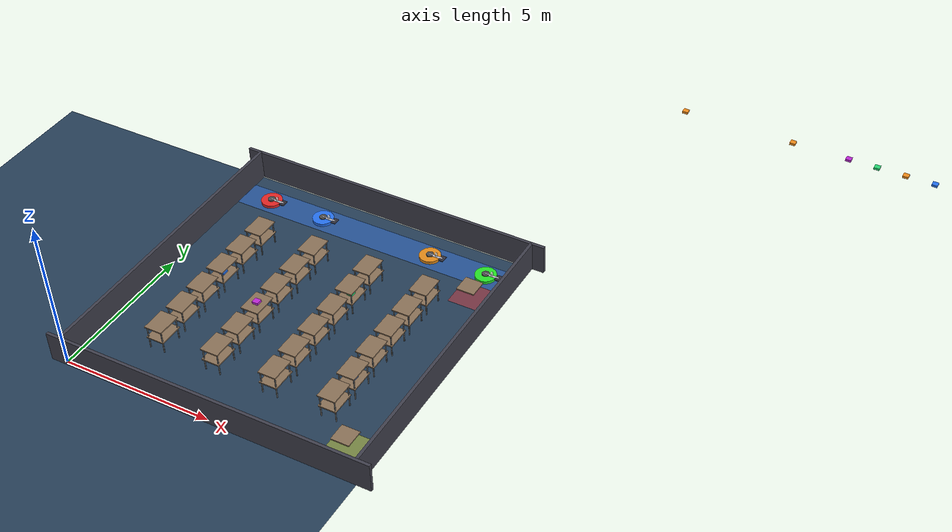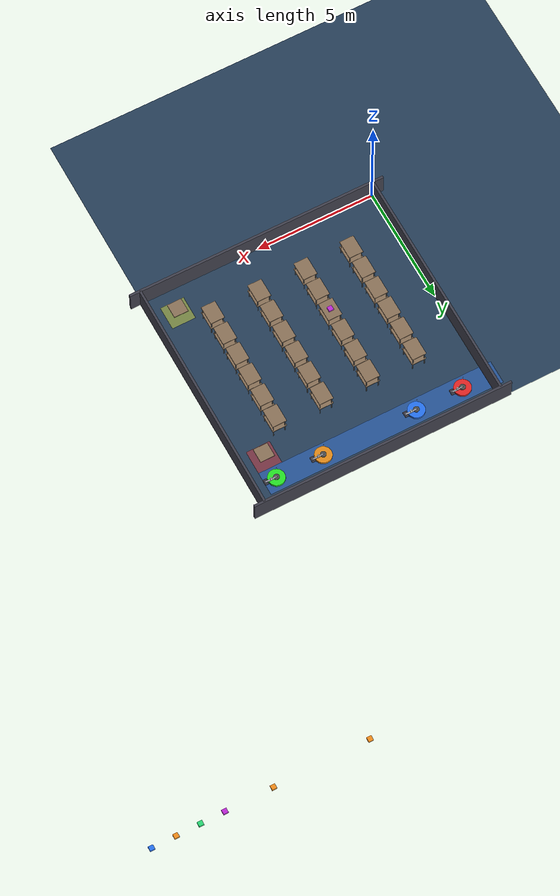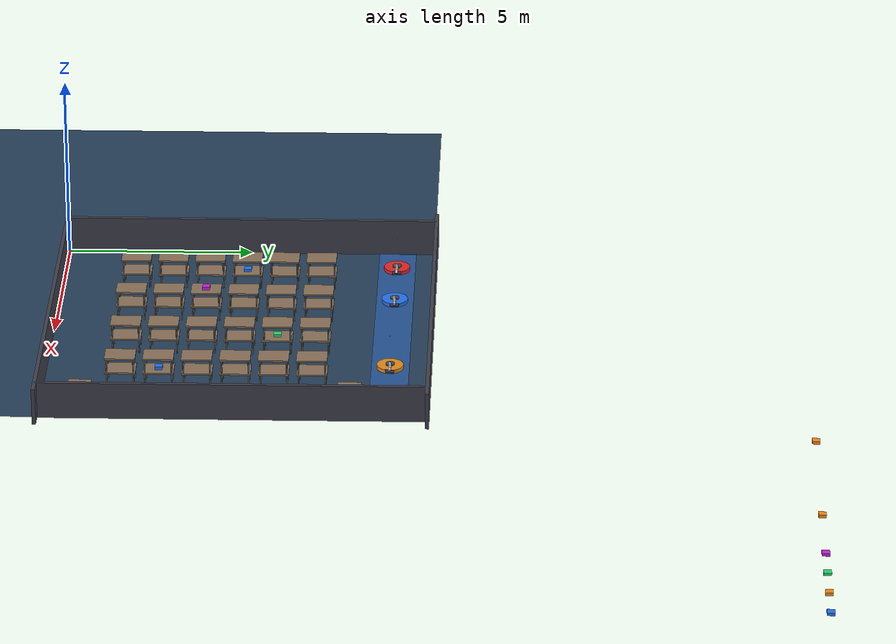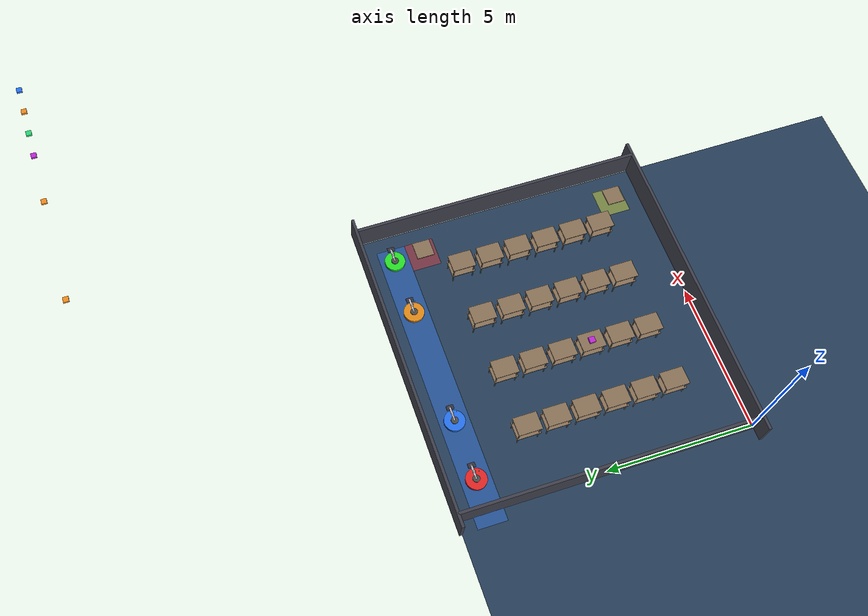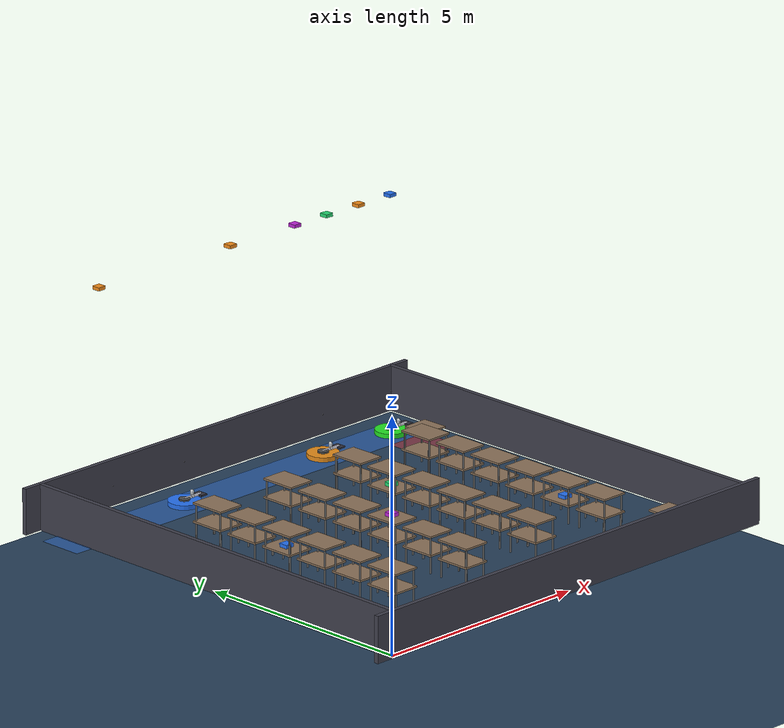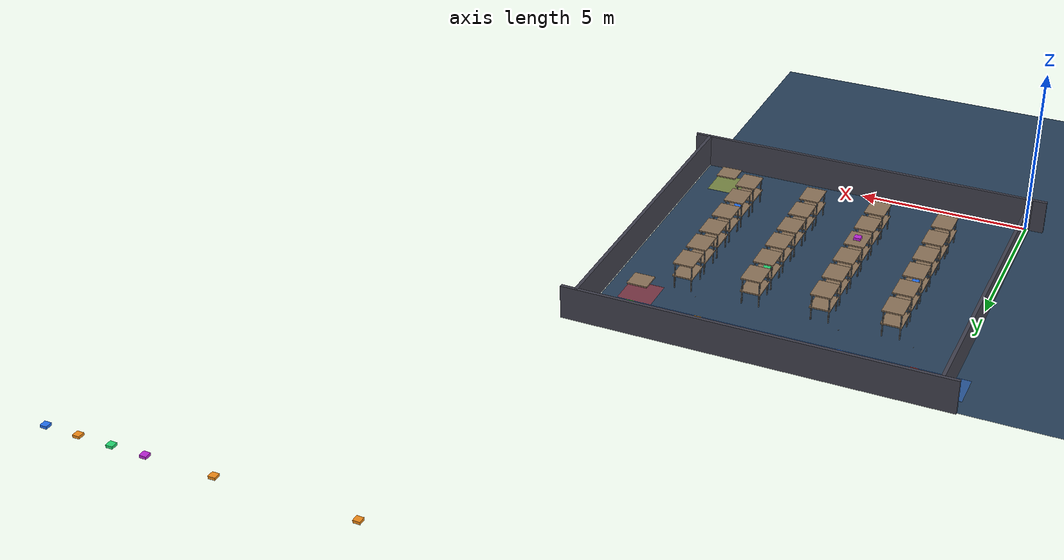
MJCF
<mujoco>
    <option gravity="0 0 -9.81" timestep="0.002" />
    <default>
        <geom contype="1" conaffinity="1" group="0"/>
    </default>
    <asset>
        <texture type="2d" name="grid" builtin="checker" rgb1=".2 .3 .4" rgb2=".1 .2 .3" width="512" height="512"/>
        <material name="grid_mat" texture="grid" texrepeat="10 10" texuniform="true" reflectance="0.2"/>
        <material name="shelf_mat" rgba="0.55 0.45 0.35 1" />
        <material name="wall_mat" rgba="0.25 0.25 0.30 1" />
        <material name="pkg_orange" rgba="0.95 0.55 0.1 1" />
        <material name="pkg_blue" rgba="0.15 0.45 0.95 1" />
        <material name="pkg_purple" rgba="0.75 0.15 0.85 1" />
        <material name="pkg_green" rgba="0.15 0.85 0.45 1" />
        <material name="mat_parking" rgba="0.2 0.5 1.0 0.4"/>
        <material name="mat_outbound" rgba="1.0 0.2 0.2 0.4"/>
        <material name="mat_inbound" rgba="1.0 1.0 0.2 0.4"/>
    </asset>
    <worldbody>
        <light directional="true" diffuse=".8 .8 .8" specular=".2 .2 .2" pos="0 0 10" dir="0 0 -1"/>
        <camera name="top_down" pos="5 5 12" zaxis="0 0 1" fovy="45"/>
        <camera name="isometric" pos="5 -8 10" xyaxes="1 0 0 0 0.707 0.707" fovy="55"/>
        <!-- Floor -->
        <geom type="plane" size="10 10 0.1" material="grid_mat" contype="1" conaffinity="1"/>

        <!-- ============== VISUAL ZONES ============== -->
        <!-- Parking (x=0..9, y=9) -->
        <geom name="zone_parking" type="box" size="5.0 0.5 0.005" pos="4.5 9.0 0.005" material="mat_parking" contype="0" conaffinity="0"/>
        <!-- Inbound Dock / Get Place (x=9, y=1) -->
        <geom name="zone_inbound" type="box" size="0.5 0.5 0.005" pos="9.0 1.0 0.005" material="mat_inbound" contype="0" conaffinity="0"/>
        <geom name="inbound_package_stand" type="box" size="0.3 0.3 0.02" pos="9.0 1.0 0.4" material="shelf_mat"/>
        <!-- Outbound Dock / Drop-off (x=9, y=8) -->
        <geom name="zone_outbound" type="box" size="0.5 0.5 0.005" pos="9.0 8.0 0.005" material="mat_outbound" contype="0" conaffinity="0"/>
        <geom name="outbound_package_stand" type="box" size="0.3 0.3 0.02" pos="9.0 8.0 0.4" material="shelf_mat"/>

        <!-- ============== PERIMETER WALLS ============== -->
        <geom name="wall_south" type="box" size="5.5 0.05 0.5" pos="5 -0.05 0.5" material="wall_mat"/>
        <geom name="wall_north" type="box" size="5.5 0.05 0.5" pos="5 10.05 0.5" material="wall_mat"/>
        <geom name="wall_west" type="box" size="0.05 5.05 0.5" pos="-0.05 5 0.5" material="wall_mat"/>
        <geom name="wall_east" type="box" size="0.05 5.05 0.5" pos="10.05 5 0.5" material="wall_mat"/>

        <!-- ============== SHELF ROW x=2, y=2..7 ============== -->
        <body name="shelf_2_2" pos="2 2 0"><geom name="shelf_2_2_tier_0" type="box" size="0.3 0.4 0.02" pos="0 0 0.4" material="shelf_mat"/><geom name="shelf_2_2_tier_1" type="box" size="0.3 0.4 0.02" pos="0 0 0.8" material="shelf_mat"/><geom name="shelf_2_2_leg_sw" type="cylinder" size="0.02 0.4" pos="-0.25 -0.35 0.4" rgba="0.4 0.4 0.4 1"/><geom name="shelf_2_2_leg_se" type="cylinder" size="0.02 0.4" pos="0.25 -0.35 0.4" rgba="0.4 0.4 0.4 1"/><geom name="shelf_2_2_leg_nw" type="cylinder" size="0.02 0.4" pos="-0.25 0.35 0.4" rgba="0.4 0.4 0.4 1"/><geom name="shelf_2_2_leg_ne" type="cylinder" size="0.02 0.4" pos="0.25 0.35 0.4" rgba="0.4 0.4 0.4 1"/></body>
        <body name="shelf_2_3" pos="2 3 0"><geom name="shelf_2_3_tier_0" type="box" size="0.3 0.4 0.02" pos="0 0 0.4" material="shelf_mat"/><geom name="shelf_2_3_tier_1" type="box" size="0.3 0.4 0.02" pos="0 0 0.8" material="shelf_mat"/><geom name="shelf_2_3_leg_sw" type="cylinder" size="0.02 0.4" pos="-0.25 -0.35 0.4" rgba="0.4 0.4 0.4 1"/><geom name="shelf_2_3_leg_se" type="cylinder" size="0.02 0.4" pos="0.25 -0.35 0.4" rgba="0.4 0.4 0.4 1"/><geom name="shelf_2_3_leg_nw" type="cylinder" size="0.02 0.4" pos="-0.25 0.35 0.4" rgba="0.4 0.4 0.4 1"/><geom name="shelf_2_3_leg_ne" type="cylinder" size="0.02 0.4" pos="0.25 0.35 0.4" rgba="0.4 0.4 0.4 1"/></body>
        <body name="shelf_2_4" pos="2 4 0"><geom name="shelf_2_4_tier_0" type="box" size="0.3 0.4 0.02" pos="0 0 0.4" material="shelf_mat"/><geom name="shelf_2_4_tier_1" type="box" size="0.3 0.4 0.02" pos="0 0 0.8" material="shelf_mat"/><geom name="shelf_2_4_leg_sw" type="cylinder" size="0.02 0.4" pos="-0.25 -0.35 0.4" rgba="0.4 0.4 0.4 1"/><geom name="shelf_2_4_leg_se" type="cylinder" size="0.02 0.4" pos="0.25 -0.35 0.4" rgba="0.4 0.4 0.4 1"/><geom name="shelf_2_4_leg_nw" type="cylinder" size="0.02 0.4" pos="-0.25 0.35 0.4" rgba="0.4 0.4 0.4 1"/><geom name="shelf_2_4_leg_ne" type="cylinder" size="0.02 0.4" pos="0.25 0.35 0.4" rgba="0.4 0.4 0.4 1"/></body>
        <body name="shelf_2_5" pos="2 5 0"><geom name="shelf_2_5_tier_0" type="box" size="0.3 0.4 0.02" pos="0 0 0.4" material="shelf_mat"/><geom name="shelf_2_5_tier_1" type="box" size="0.3 0.4 0.02" pos="0 0 0.8" material="shelf_mat"/><geom name="shelf_2_5_leg_sw" type="cylinder" size="0.02 0.4" pos="-0.25 -0.35 0.4" rgba="0.4 0.4 0.4 1"/><geom name="shelf_2_5_leg_se" type="cylinder" size="0.02 0.4" pos="0.25 -0.35 0.4" rgba="0.4 0.4 0.4 1"/><geom name="shelf_2_5_leg_nw" type="cylinder" size="0.02 0.4" pos="-0.25 0.35 0.4" rgba="0.4 0.4 0.4 1"/><geom name="shelf_2_5_leg_ne" type="cylinder" size="0.02 0.4" pos="0.25 0.35 0.4" rgba="0.4 0.4 0.4 1"/></body>
        <body name="shelf_2_6" pos="2 6 0"><geom name="shelf_2_6_tier_0" type="box" size="0.3 0.4 0.02" pos="0 0 0.4" material="shelf_mat"/><geom name="shelf_2_6_tier_1" type="box" size="0.3 0.4 0.02" pos="0 0 0.8" material="shelf_mat"/><geom name="shelf_2_6_leg_sw" type="cylinder" size="0.02 0.4" pos="-0.25 -0.35 0.4" rgba="0.4 0.4 0.4 1"/><geom name="shelf_2_6_leg_se" type="cylinder" size="0.02 0.4" pos="0.25 -0.35 0.4" rgba="0.4 0.4 0.4 1"/><geom name="shelf_2_6_leg_nw" type="cylinder" size="0.02 0.4" pos="-0.25 0.35 0.4" rgba="0.4 0.4 0.4 1"/><geom name="shelf_2_6_leg_ne" type="cylinder" size="0.02 0.4" pos="0.25 0.35 0.4" rgba="0.4 0.4 0.4 1"/></body>
        <body name="shelf_2_7" pos="2 7 0"><geom name="shelf_2_7_tier_0" type="box" size="0.3 0.4 0.02" pos="0 0 0.4" material="shelf_mat"/><geom name="shelf_2_7_tier_1" type="box" size="0.3 0.4 0.02" pos="0 0 0.8" material="shelf_mat"/><geom name="shelf_2_7_leg_sw" type="cylinder" size="0.02 0.4" pos="-0.25 -0.35 0.4" rgba="0.4 0.4 0.4 1"/><geom name="shelf_2_7_leg_se" type="cylinder" size="0.02 0.4" pos="0.25 -0.35 0.4" rgba="0.4 0.4 0.4 1"/><geom name="shelf_2_7_leg_nw" type="cylinder" size="0.02 0.4" pos="-0.25 0.35 0.4" rgba="0.4 0.4 0.4 1"/><geom name="shelf_2_7_leg_ne" type="cylinder" size="0.02 0.4" pos="0.25 0.35 0.4" rgba="0.4 0.4 0.4 1"/></body>

        <!-- ============== SHELF ROW x=4, y=2..7 ============== -->
        <body name="shelf_4_2" pos="4 2 0"><geom name="shelf_4_2_tier_0" type="box" size="0.3 0.4 0.02" pos="0 0 0.4" material="shelf_mat"/><geom name="shelf_4_2_tier_1" type="box" size="0.3 0.4 0.02" pos="0 0 0.8" material="shelf_mat"/><geom name="shelf_4_2_leg_sw" type="cylinder" size="0.02 0.4" pos="-0.25 -0.35 0.4" rgba="0.4 0.4 0.4 1"/><geom name="shelf_4_2_leg_se" type="cylinder" size="0.02 0.4" pos="0.25 -0.35 0.4" rgba="0.4 0.4 0.4 1"/><geom name="shelf_4_2_leg_nw" type="cylinder" size="0.02 0.4" pos="-0.25 0.35 0.4" rgba="0.4 0.4 0.4 1"/><geom name="shelf_4_2_leg_ne" type="cylinder" size="0.02 0.4" pos="0.25 0.35 0.4" rgba="0.4 0.4 0.4 1"/></body>
        <body name="shelf_4_3" pos="4 3 0"><geom name="shelf_4_3_tier_0" type="box" size="0.3 0.4 0.02" pos="0 0 0.4" material="shelf_mat"/><geom name="shelf_4_3_tier_1" type="box" size="0.3 0.4 0.02" pos="0 0 0.8" material="shelf_mat"/><geom name="shelf_4_3_leg_sw" type="cylinder" size="0.02 0.4" pos="-0.25 -0.35 0.4" rgba="0.4 0.4 0.4 1"/><geom name="shelf_4_3_leg_se" type="cylinder" size="0.02 0.4" pos="0.25 -0.35 0.4" rgba="0.4 0.4 0.4 1"/><geom name="shelf_4_3_leg_nw" type="cylinder" size="0.02 0.4" pos="-0.25 0.35 0.4" rgba="0.4 0.4 0.4 1"/><geom name="shelf_4_3_leg_ne" type="cylinder" size="0.02 0.4" pos="0.25 0.35 0.4" rgba="0.4 0.4 0.4 1"/></body>
        <body name="shelf_4_4" pos="4 4 0"><geom name="shelf_4_4_tier_0" type="box" size="0.3 0.4 0.02" pos="0 0 0.4" material="shelf_mat"/><geom name="shelf_4_4_tier_1" type="box" size="0.3 0.4 0.02" pos="0 0 0.8" material="shelf_mat"/><geom name="shelf_4_4_leg_sw" type="cylinder" size="0.02 0.4" pos="-0.25 -0.35 0.4" rgba="0.4 0.4 0.4 1"/><geom name="shelf_4_4_leg_se" type="cylinder" size="0.02 0.4" pos="0.25 -0.35 0.4" rgba="0.4 0.4 0.4 1"/><geom name="shelf_4_4_leg_nw" type="cylinder" size="0.02 0.4" pos="-0.25 0.35 0.4" rgba="0.4 0.4 0.4 1"/><geom name="shelf_4_4_leg_ne" type="cylinder" size="0.02 0.4" pos="0.25 0.35 0.4" rgba="0.4 0.4 0.4 1"/></body>
        <body name="shelf_4_5" pos="4 5 0"><geom name="shelf_4_5_tier_0" type="box" size="0.3 0.4 0.02" pos="0 0 0.4" material="shelf_mat"/><geom name="shelf_4_5_tier_1" type="box" size="0.3 0.4 0.02" pos="0 0 0.8" material="shelf_mat"/><geom name="shelf_4_5_leg_sw" type="cylinder" size="0.02 0.4" pos="-0.25 -0.35 0.4" rgba="0.4 0.4 0.4 1"/><geom name="shelf_4_5_leg_se" type="cylinder" size="0.02 0.4" pos="0.25 -0.35 0.4" rgba="0.4 0.4 0.4 1"/><geom name="shelf_4_5_leg_nw" type="cylinder" size="0.02 0.4" pos="-0.25 0.35 0.4" rgba="0.4 0.4 0.4 1"/><geom name="shelf_4_5_leg_ne" type="cylinder" size="0.02 0.4" pos="0.25 0.35 0.4" rgba="0.4 0.4 0.4 1"/></body>
        <body name="shelf_4_6" pos="4 6 0"><geom name="shelf_4_6_tier_0" type="box" size="0.3 0.4 0.02" pos="0 0 0.4" material="shelf_mat"/><geom name="shelf_4_6_tier_1" type="box" size="0.3 0.4 0.02" pos="0 0 0.8" material="shelf_mat"/><geom name="shelf_4_6_leg_sw" type="cylinder" size="0.02 0.4" pos="-0.25 -0.35 0.4" rgba="0.4 0.4 0.4 1"/><geom name="shelf_4_6_leg_se" type="cylinder" size="0.02 0.4" pos="0.25 -0.35 0.4" rgba="0.4 0.4 0.4 1"/><geom name="shelf_4_6_leg_nw" type="cylinder" size="0.02 0.4" pos="-0.25 0.35 0.4" rgba="0.4 0.4 0.4 1"/><geom name="shelf_4_6_leg_ne" type="cylinder" size="0.02 0.4" pos="0.25 0.35 0.4" rgba="0.4 0.4 0.4 1"/></body>
        <body name="shelf_4_7" pos="4 7 0"><geom name="shelf_4_7_tier_0" type="box" size="0.3 0.4 0.02" pos="0 0 0.4" material="shelf_mat"/><geom name="shelf_4_7_tier_1" type="box" size="0.3 0.4 0.02" pos="0 0 0.8" material="shelf_mat"/><geom name="shelf_4_7_leg_sw" type="cylinder" size="0.02 0.4" pos="-0.25 -0.35 0.4" rgba="0.4 0.4 0.4 1"/><geom name="shelf_4_7_leg_se" type="cylinder" size="0.02 0.4" pos="0.25 -0.35 0.4" rgba="0.4 0.4 0.4 1"/><geom name="shelf_4_7_leg_nw" type="cylinder" size="0.02 0.4" pos="-0.25 0.35 0.4" rgba="0.4 0.4 0.4 1"/><geom name="shelf_4_7_leg_ne" type="cylinder" size="0.02 0.4" pos="0.25 0.35 0.4" rgba="0.4 0.4 0.4 1"/></body>

        <!-- ============== SHELF ROW x=6, y=2..7 ============== -->
        <body name="shelf_6_2" pos="6 2 0"><geom name="shelf_6_2_tier_0" type="box" size="0.3 0.4 0.02" pos="0 0 0.4" material="shelf_mat"/><geom name="shelf_6_2_tier_1" type="box" size="0.3 0.4 0.02" pos="0 0 0.8" material="shelf_mat"/><geom name="shelf_6_2_leg_sw" type="cylinder" size="0.02 0.4" pos="-0.25 -0.35 0.4" rgba="0.4 0.4 0.4 1"/><geom name="shelf_6_2_leg_se" type="cylinder" size="0.02 0.4" pos="0.25 -0.35 0.4" rgba="0.4 0.4 0.4 1"/><geom name="shelf_6_2_leg_nw" type="cylinder" size="0.02 0.4" pos="-0.25 0.35 0.4" rgba="0.4 0.4 0.4 1"/><geom name="shelf_6_2_leg_ne" type="cylinder" size="0.02 0.4" pos="0.25 0.35 0.4" rgba="0.4 0.4 0.4 1"/></body>
        <body name="shelf_6_3" pos="6 3 0"><geom name="shelf_6_3_tier_0" type="box" size="0.3 0.4 0.02" pos="0 0 0.4" material="shelf_mat"/><geom name="shelf_6_3_tier_1" type="box" size="0.3 0.4 0.02" pos="0 0 0.8" material="shelf_mat"/><geom name="shelf_6_3_leg_sw" type="cylinder" size="0.02 0.4" pos="-0.25 -0.35 0.4" rgba="0.4 0.4 0.4 1"/><geom name="shelf_6_3_leg_se" type="cylinder" size="0.02 0.4" pos="0.25 -0.35 0.4" rgba="0.4 0.4 0.4 1"/><geom name="shelf_6_3_leg_nw" type="cylinder" size="0.02 0.4" pos="-0.25 0.35 0.4" rgba="0.4 0.4 0.4 1"/><geom name="shelf_6_3_leg_ne" type="cylinder" size="0.02 0.4" pos="0.25 0.35 0.4" rgba="0.4 0.4 0.4 1"/></body>
        <body name="shelf_6_4" pos="6 4 0"><geom name="shelf_6_4_tier_0" type="box" size="0.3 0.4 0.02" pos="0 0 0.4" material="shelf_mat"/><geom name="shelf_6_4_tier_1" type="box" size="0.3 0.4 0.02" pos="0 0 0.8" material="shelf_mat"/><geom name="shelf_6_4_leg_sw" type="cylinder" size="0.02 0.4" pos="-0.25 -0.35 0.4" rgba="0.4 0.4 0.4 1"/><geom name="shelf_6_4_leg_se" type="cylinder" size="0.02 0.4" pos="0.25 -0.35 0.4" rgba="0.4 0.4 0.4 1"/><geom name="shelf_6_4_leg_nw" type="cylinder" size="0.02 0.4" pos="-0.25 0.35 0.4" rgba="0.4 0.4 0.4 1"/><geom name="shelf_6_4_leg_ne" type="cylinder" size="0.02 0.4" pos="0.25 0.35 0.4" rgba="0.4 0.4 0.4 1"/></body>
        <body name="shelf_6_5" pos="6 5 0"><geom name="shelf_6_5_tier_0" type="box" size="0.3 0.4 0.02" pos="0 0 0.4" material="shelf_mat"/><geom name="shelf_6_5_tier_1" type="box" size="0.3 0.4 0.02" pos="0 0 0.8" material="shelf_mat"/><geom name="shelf_6_5_leg_sw" type="cylinder" size="0.02 0.4" pos="-0.25 -0.35 0.4" rgba="0.4 0.4 0.4 1"/><geom name="shelf_6_5_leg_se" type="cylinder" size="0.02 0.4" pos="0.25 -0.35 0.4" rgba="0.4 0.4 0.4 1"/><geom name="shelf_6_5_leg_nw" type="cylinder" size="0.02 0.4" pos="-0.25 0.35 0.4" rgba="0.4 0.4 0.4 1"/><geom name="shelf_6_5_leg_ne" type="cylinder" size="0.02 0.4" pos="0.25 0.35 0.4" rgba="0.4 0.4 0.4 1"/></body>
        <body name="shelf_6_6" pos="6 6 0"><geom name="shelf_6_6_tier_0" type="box" size="0.3 0.4 0.02" pos="0 0 0.4" material="shelf_mat"/><geom name="shelf_6_6_tier_1" type="box" size="0.3 0.4 0.02" pos="0 0 0.8" material="shelf_mat"/><geom name="shelf_6_6_leg_sw" type="cylinder" size="0.02 0.4" pos="-0.25 -0.35 0.4" rgba="0.4 0.4 0.4 1"/><geom name="shelf_6_6_leg_se" type="cylinder" size="0.02 0.4" pos="0.25 -0.35 0.4" rgba="0.4 0.4 0.4 1"/><geom name="shelf_6_6_leg_nw" type="cylinder" size="0.02 0.4" pos="-0.25 0.35 0.4" rgba="0.4 0.4 0.4 1"/><geom name="shelf_6_6_leg_ne" type="cylinder" size="0.02 0.4" pos="0.25 0.35 0.4" rgba="0.4 0.4 0.4 1"/></body>
        <body name="shelf_6_7" pos="6 7 0"><geom name="shelf_6_7_tier_0" type="box" size="0.3 0.4 0.02" pos="0 0 0.4" material="shelf_mat"/><geom name="shelf_6_7_tier_1" type="box" size="0.3 0.4 0.02" pos="0 0 0.8" material="shelf_mat"/><geom name="shelf_6_7_leg_sw" type="cylinder" size="0.02 0.4" pos="-0.25 -0.35 0.4" rgba="0.4 0.4 0.4 1"/><geom name="shelf_6_7_leg_se" type="cylinder" size="0.02 0.4" pos="0.25 -0.35 0.4" rgba="0.4 0.4 0.4 1"/><geom name="shelf_6_7_leg_nw" type="cylinder" size="0.02 0.4" pos="-0.25 0.35 0.4" rgba="0.4 0.4 0.4 1"/><geom name="shelf_6_7_leg_ne" type="cylinder" size="0.02 0.4" pos="0.25 0.35 0.4" rgba="0.4 0.4 0.4 1"/></body>

        <!-- ============== SHELF ROW x=8, y=2..7 ============== -->
        <body name="shelf_8_2" pos="8 2 0"><geom name="shelf_8_2_tier_0" type="box" size="0.3 0.4 0.02" pos="0 0 0.4" material="shelf_mat"/><geom name="shelf_8_2_tier_1" type="box" size="0.3 0.4 0.02" pos="0 0 0.8" material="shelf_mat"/><geom name="shelf_8_2_leg_sw" type="cylinder" size="0.02 0.4" pos="-0.25 -0.35 0.4" rgba="0.4 0.4 0.4 1"/><geom name="shelf_8_2_leg_se" type="cylinder" size="0.02 0.4" pos="0.25 -0.35 0.4" rgba="0.4 0.4 0.4 1"/><geom name="shelf_8_2_leg_nw" type="cylinder" size="0.02 0.4" pos="-0.25 0.35 0.4" rgba="0.4 0.4 0.4 1"/><geom name="shelf_8_2_leg_ne" type="cylinder" size="0.02 0.4" pos="0.25 0.35 0.4" rgba="0.4 0.4 0.4 1"/></body>
        <body name="shelf_8_3" pos="8 3 0"><geom name="shelf_8_3_tier_0" type="box" size="0.3 0.4 0.02" pos="0 0 0.4" material="shelf_mat"/><geom name="shelf_8_3_tier_1" type="box" size="0.3 0.4 0.02" pos="0 0 0.8" material="shelf_mat"/><geom name="shelf_8_3_leg_sw" type="cylinder" size="0.02 0.4" pos="-0.25 -0.35 0.4" rgba="0.4 0.4 0.4 1"/><geom name="shelf_8_3_leg_se" type="cylinder" size="0.02 0.4" pos="0.25 -0.35 0.4" rgba="0.4 0.4 0.4 1"/><geom name="shelf_8_3_leg_nw" type="cylinder" size="0.02 0.4" pos="-0.25 0.35 0.4" rgba="0.4 0.4 0.4 1"/><geom name="shelf_8_3_leg_ne" type="cylinder" size="0.02 0.4" pos="0.25 0.35 0.4" rgba="0.4 0.4 0.4 1"/></body>
        <body name="shelf_8_4" pos="8 4 0"><geom name="shelf_8_4_tier_0" type="box" size="0.3 0.4 0.02" pos="0 0 0.4" material="shelf_mat"/><geom name="shelf_8_4_tier_1" type="box" size="0.3 0.4 0.02" pos="0 0 0.8" material="shelf_mat"/><geom name="shelf_8_4_leg_sw" type="cylinder" size="0.02 0.4" pos="-0.25 -0.35 0.4" rgba="0.4 0.4 0.4 1"/><geom name="shelf_8_4_leg_se" type="cylinder" size="0.02 0.4" pos="0.25 -0.35 0.4" rgba="0.4 0.4 0.4 1"/><geom name="shelf_8_4_leg_nw" type="cylinder" size="0.02 0.4" pos="-0.25 0.35 0.4" rgba="0.4 0.4 0.4 1"/><geom name="shelf_8_4_leg_ne" type="cylinder" size="0.02 0.4" pos="0.25 0.35 0.4" rgba="0.4 0.4 0.4 1"/></body>
        <body name="shelf_8_5" pos="8 5 0"><geom name="shelf_8_5_tier_0" type="box" size="0.3 0.4 0.02" pos="0 0 0.4" material="shelf_mat"/><geom name="shelf_8_5_tier_1" type="box" size="0.3 0.4 0.02" pos="0 0 0.8" material="shelf_mat"/><geom name="shelf_8_5_leg_sw" type="cylinder" size="0.02 0.4" pos="-0.25 -0.35 0.4" rgba="0.4 0.4 0.4 1"/><geom name="shelf_8_5_leg_se" type="cylinder" size="0.02 0.4" pos="0.25 -0.35 0.4" rgba="0.4 0.4 0.4 1"/><geom name="shelf_8_5_leg_nw" type="cylinder" size="0.02 0.4" pos="-0.25 0.35 0.4" rgba="0.4 0.4 0.4 1"/><geom name="shelf_8_5_leg_ne" type="cylinder" size="0.02 0.4" pos="0.25 0.35 0.4" rgba="0.4 0.4 0.4 1"/></body>
        <body name="shelf_8_6" pos="8 6 0"><geom name="shelf_8_6_tier_0" type="box" size="0.3 0.4 0.02" pos="0 0 0.4" material="shelf_mat"/><geom name="shelf_8_6_tier_1" type="box" size="0.3 0.4 0.02" pos="0 0 0.8" material="shelf_mat"/><geom name="shelf_8_6_leg_sw" type="cylinder" size="0.02 0.4" pos="-0.25 -0.35 0.4" rgba="0.4 0.4 0.4 1"/><geom name="shelf_8_6_leg_se" type="cylinder" size="0.02 0.4" pos="0.25 -0.35 0.4" rgba="0.4 0.4 0.4 1"/><geom name="shelf_8_6_leg_nw" type="cylinder" size="0.02 0.4" pos="-0.25 0.35 0.4" rgba="0.4 0.4 0.4 1"/><geom name="shelf_8_6_leg_ne" type="cylinder" size="0.02 0.4" pos="0.25 0.35 0.4" rgba="0.4 0.4 0.4 1"/></body>
        <body name="shelf_8_7" pos="8 7 0"><geom name="shelf_8_7_tier_0" type="box" size="0.3 0.4 0.02" pos="0 0 0.4" material="shelf_mat"/><geom name="shelf_8_7_tier_1" type="box" size="0.3 0.4 0.02" pos="0 0 0.8" material="shelf_mat"/><geom name="shelf_8_7_leg_sw" type="cylinder" size="0.02 0.4" pos="-0.25 -0.35 0.4" rgba="0.4 0.4 0.4 1"/><geom name="shelf_8_7_leg_se" type="cylinder" size="0.02 0.4" pos="0.25 -0.35 0.4" rgba="0.4 0.4 0.4 1"/><geom name="shelf_8_7_leg_nw" type="cylinder" size="0.02 0.4" pos="-0.25 0.35 0.4" rgba="0.4 0.4 0.4 1"/><geom name="shelf_8_7_leg_ne" type="cylinder" size="0.02 0.4" pos="0.25 0.35 0.4" rgba="0.4 0.4 0.4 1"/></body>

        <!-- ============== OBJECT POOL GRAVEYARD & SHELVES ============== -->
        <body name="package_p1" pos="11 20 0.04"><joint type="free" name="package_p1_free"/><geom type="box" size="0.1 0.1 0.04" material="pkg_orange" mass="0.5"/></body>
        <body name="package_p2" pos="2 5 0.46"><joint type="free" name="package_p2_free"/><geom type="box" size="0.1 0.1 0.04" material="pkg_blue" mass="0.5"/></body>
        <body name="package_p3" pos="4 4 0.86"><joint type="free" name="package_p3_free"/><geom type="box" size="0.1 0.1 0.04" material="pkg_purple" mass="0.5"/></body>
        <body name="package_p4" pos="6 6 0.46"><joint type="free" name="package_p4_free"/><geom type="box" size="0.1 0.1 0.04" material="pkg_green" mass="0.5"/></body>
        <body name="package_p5" pos="15 20 0.04"><joint type="free" name="package_p5_free"/><geom type="box" size="0.1 0.1 0.04" material="pkg_orange" mass="0.5"/></body>
        <body name="package_p6" pos="8 3 0.46"><joint type="free" name="package_p6_free"/><geom type="box" size="0.1 0.1 0.04" material="pkg_blue" mass="0.5"/></body>
        <body name="package_p7" pos="17 20 0.04"><joint type="free" name="package_p7_free"/><geom type="box" size="0.1 0.1 0.04" material="pkg_purple" mass="0.5"/></body>
        <body name="package_p8" pos="18 20 0.04"><joint type="free" name="package_p8_free"/><geom type="box" size="0.1 0.1 0.04" material="pkg_green" mass="0.5"/></body>
        <body name="package_p9" pos="19 20 0.04"><joint type="free" name="package_p9_free"/><geom type="box" size="0.1 0.1 0.04" material="pkg_orange" mass="0.5"/></body>
        <body name="package_p10" pos="20 20 0.04"><joint type="free" name="package_p10_free"/><geom type="box" size="0.1 0.1 0.04" material="pkg_blue" mass="0.5"/></body>

        <!-- ============== ROBOT r1 (start at aisle x=1, y=9) ============== -->
        <body name="robot_r1" pos="1 9 0.06">
            <joint type="slide" name="robot_r1_x" axis="1 0 0" damping="50"/>
            <joint type="slide" name="robot_r1_y" axis="0 1 0" damping="50"/>
            <geom name="r1_base" type="cylinder" size="0.35 0.05" rgba="0.9 0.15 0.15 1" mass="5"/>
            <geom type="capsule" size="0.04 0.12" pos="0.22 0 0.06" rgba="1 1 1 0.8" contype="0" conaffinity="0"/>
            <site name="robot_r1_wall_pos_x_site" pos="0 0 0.88" zaxis="1 0 0" size="0.01"/>
            <site name="robot_r1_wall_neg_x_site" pos="0 0 0.88" zaxis="-1 0 0" size="0.01"/>
            <site name="robot_r1_wall_pos_y_site" pos="0 0 0.88" zaxis="0 1 0" size="0.01"/>
            <site name="robot_r1_wall_neg_y_site" pos="0 0 0.88" zaxis="0 -1 0" size="0.01"/>
            <body name="robot_r1_arm" pos="0 0 0.06">
                <joint type="slide" name="robot_r1_lift" axis="0 0 1" range="0 1.0" damping="15" limited="true"/>
                <geom name="r1_lift_carriage" type="cylinder" size="0.12 0.025" rgba="0.3 0.3 0.3 1" mass="0.2" contype="0" conaffinity="0"/>
                <body name="robot_r1_turret_body">
                    <joint type="hinge" name="robot_r1_turret" axis="0 0 1" range="-180 180" damping="25" limited="true"/>
                    <geom name="r1_inner_arm" type="capsule" size="0.035" fromto="0 0 0 0.45 0 0" rgba="0.8 0.8 0.85 1" mass="0.15" contype="0" conaffinity="0"/>
                    <body name="robot_r1_gripper" pos="0.45 0 0">
                        <joint type="slide" name="robot_r1_extend" axis="1 0 0" range="0 0.5" damping="42" limited="true"/>
                        <geom name="r1_outer_arm" type="capsule" size="0.025" fromto="-0.5 0 0 0 0 0" rgba="0.6 0.65 0.75 1" mass="0.1" contype="0" conaffinity="0"/>
                        <geom name="r1_gripper_plate" type="box" size="0.08 0.12 0.015" rgba="0.2 0.2 0.25 1" mass="0.1" contype="0" conaffinity="0"/>
                        <site name="robot_r1_grip_site" type="sphere" size="0.025" rgba="1 0.8 0.1 1"/>
                        <site name="robot_r1_payload_site" pos="0 0 0.04" zaxis="0 0 1" size="0.01"/>
                    </body>
                </body>
            </body>
        </body>

        <!-- ============== ROBOT r2 (start at aisle x=9, y=9) ============== -->
        <body name="robot_r2" pos="9 9 0.06">
            <joint type="slide" name="robot_r2_x" axis="1 0 0" damping="50"/>
            <joint type="slide" name="robot_r2_y" axis="0 1 0" damping="50"/>
            <geom name="r2_base" type="cylinder" size="0.35 0.05" rgba="0.15 0.9 0.15 1" mass="5"/>
            <geom type="capsule" size="0.04 0.12" pos="0.22 0 0.06" rgba="1 1 1 0.8" contype="0" conaffinity="0"/>
            <site name="robot_r2_wall_pos_x_site" pos="0 0 0.88" zaxis="1 0 0" size="0.01"/>
            <site name="robot_r2_wall_neg_x_site" pos="0 0 0.88" zaxis="-1 0 0" size="0.01"/>
            <site name="robot_r2_wall_pos_y_site" pos="0 0 0.88" zaxis="0 1 0" size="0.01"/>
            <site name="robot_r2_wall_neg_y_site" pos="0 0 0.88" zaxis="0 -1 0" size="0.01"/>
            <body name="robot_r2_arm" pos="0 0 0.06">
                <joint type="slide" name="robot_r2_lift" axis="0 0 1" range="0 1.0" damping="15" limited="true"/>
                <geom name="r2_lift_carriage" type="cylinder" size="0.12 0.025" rgba="0.3 0.3 0.3 1" mass="0.2" contype="0" conaffinity="0"/>
                <body name="robot_r2_turret_body">
                    <joint type="hinge" name="robot_r2_turret" axis="0 0 1" range="-180 180" damping="25" limited="true"/>
                    <geom name="r2_inner_arm" type="capsule" size="0.035" fromto="0 0 0 0.45 0 0" rgba="0.8 0.8 0.85 1" mass="0.15" contype="0" conaffinity="0"/>
                    <body name="robot_r2_gripper" pos="0.45 0 0">
                        <joint type="slide" name="robot_r2_extend" axis="1 0 0" range="0 0.5" damping="42" limited="true"/>
                        <geom name="r2_outer_arm" type="capsule" size="0.025" fromto="-0.5 0 0 0 0 0" rgba="0.6 0.65 0.75 1" mass="0.1" contype="0" conaffinity="0"/>
                        <geom name="r2_gripper_plate" type="box" size="0.08 0.12 0.015" rgba="0.2 0.2 0.25 1" mass="0.1" contype="0" conaffinity="0"/>
                        <site name="robot_r2_grip_site" type="sphere" size="0.025" rgba="1 0.8 0.1 1"/>
                        <site name="robot_r2_payload_site" pos="0 0 0.04" zaxis="0 0 1" size="0.01"/>
                    </body>
                </body>
            </body>
        </body>

        <!-- ============== ROBOT r3 (start at aisle x=3, y=9) ============== -->
        <body name="robot_r3" pos="3 9 0.06">
            <joint type="slide" name="robot_r3_x" axis="1 0 0" damping="50"/>
            <joint type="slide" name="robot_r3_y" axis="0 1 0" damping="50"/>
            <geom name="r3_base" type="cylinder" size="0.35 0.05" rgba="0.15 0.45 0.95 1" mass="5"/>
            <geom type="capsule" size="0.04 0.12" pos="0.22 0 0.06" rgba="1 1 1 0.8" contype="0" conaffinity="0"/>
            <site name="robot_r3_wall_pos_x_site" pos="0 0 0.88" zaxis="1 0 0" size="0.01"/>
            <site name="robot_r3_wall_neg_x_site" pos="0 0 0.88" zaxis="-1 0 0" size="0.01"/>
            <site name="robot_r3_wall_pos_y_site" pos="0 0 0.88" zaxis="0 1 0" size="0.01"/>
            <site name="robot_r3_wall_neg_y_site" pos="0 0 0.88" zaxis="0 -1 0" size="0.01"/>
            <body name="robot_r3_arm" pos="0 0 0.06">
                <joint type="slide" name="robot_r3_lift" axis="0 0 1" range="0 1.0" damping="15" limited="true"/>
                <geom name="r3_lift_carriage" type="cylinder" size="0.12 0.025" rgba="0.3 0.3 0.3 1" mass="0.2" contype="0" conaffinity="0"/>
                <body name="robot_r3_turret_body">
                    <joint type="hinge" name="robot_r3_turret" axis="0 0 1" range="-180 180" damping="25" limited="true"/>
                    <geom name="r3_inner_arm" type="capsule" size="0.035" fromto="0 0 0 0.45 0 0" rgba="0.8 0.8 0.85 1" mass="0.15" contype="0" conaffinity="0"/>
                    <body name="robot_r3_gripper" pos="0.45 0 0">
                        <joint type="slide" name="robot_r3_extend" axis="1 0 0" range="0 0.5" damping="42" limited="true"/>
                        <geom name="r3_outer_arm" type="capsule" size="0.025" fromto="-0.5 0 0 0 0 0" rgba="0.6 0.65 0.75 1" mass="0.1" contype="0" conaffinity="0"/>
                        <geom name="r3_gripper_plate" type="box" size="0.08 0.12 0.015" rgba="0.2 0.2 0.25 1" mass="0.1" contype="0" conaffinity="0"/>
                        <site name="robot_r3_grip_site" type="sphere" size="0.025" rgba="1 0.8 0.1 1"/>
                        <site name="robot_r3_payload_site" pos="0 0 0.04" zaxis="0 0 1" size="0.01"/>
                    </body>
                </body>
            </body>
        </body>

        <!-- ============== ROBOT r4 (start at aisle x=7, y=9) ============== -->
        <body name="robot_r4" pos="7 9 0.06">
            <joint type="slide" name="robot_r4_x" axis="1 0 0" damping="50"/>
            <joint type="slide" name="robot_r4_y" axis="0 1 0" damping="50"/>
            <geom name="r4_base" type="cylinder" size="0.35 0.05" rgba="0.9 0.55 0.1 1" mass="5"/>
            <geom type="capsule" size="0.04 0.12" pos="0.22 0 0.06" rgba="1 1 1 0.8" contype="0" conaffinity="0"/>
            <site name="robot_r4_wall_pos_x_site" pos="0 0 0.88" zaxis="1 0 0" size="0.01"/>
            <site name="robot_r4_wall_neg_x_site" pos="0 0 0.88" zaxis="-1 0 0" size="0.01"/>
            <site name="robot_r4_wall_pos_y_site" pos="0 0 0.88" zaxis="0 1 0" size="0.01"/>
            <site name="robot_r4_wall_neg_y_site" pos="0 0 0.88" zaxis="0 -1 0" size="0.01"/>
            <body name="robot_r4_arm" pos="0 0 0.06">
                <joint type="slide" name="robot_r4_lift" axis="0 0 1" range="0 1.0" damping="15" limited="true"/>
                <geom name="r4_lift_carriage" type="cylinder" size="0.12 0.025" rgba="0.3 0.3 0.3 1" mass="0.2" contype="0" conaffinity="0"/>
                <body name="robot_r4_turret_body">
                    <joint type="hinge" name="robot_r4_turret" axis="0 0 1" range="-180 180" damping="25" limited="true"/>
                    <geom name="r4_inner_arm" type="capsule" size="0.035" fromto="0 0 0 0.45 0 0" rgba="0.8 0.8 0.85 1" mass="0.15" contype="0" conaffinity="0"/>
                    <body name="robot_r4_gripper" pos="0.45 0 0">
                        <joint type="slide" name="robot_r4_extend" axis="1 0 0" range="0 0.5" damping="42" limited="true"/>
                        <geom name="r4_outer_arm" type="capsule" size="0.025" fromto="-0.5 0 0 0 0 0" rgba="0.6 0.65 0.75 1" mass="0.1" contype="0" conaffinity="0"/>
                        <geom name="r4_gripper_plate" type="box" size="0.08 0.12 0.015" rgba="0.2 0.2 0.25 1" mass="0.1" contype="0" conaffinity="0"/>
                        <site name="robot_r4_grip_site" type="sphere" size="0.025" rgba="1 0.8 0.1 1"/>
                        <site name="robot_r4_payload_site" pos="0 0 0.04" zaxis="0 0 1" size="0.01"/>
                    </body>
                </body>
            </body>
        </body>

    </worldbody>

    <!-- ============== ACTUATORS ============== -->
    <actuator>
        <motor joint="robot_r1_x" name="robot_r1_x" gear="50"/>
        <motor joint="robot_r1_y" name="robot_r1_y" gear="50"/>
        <position joint="robot_r1_lift" name="robot_r1_lift" kp="500"/>
        <position joint="robot_r1_turret" name="robot_r1_turret" kp="1000"/>
        <position joint="robot_r1_extend" name="robot_r1_extend" kp="1000"/>
        <motor joint="robot_r2_x" name="robot_r2_x" gear="50"/>
        <motor joint="robot_r2_y" name="robot_r2_y" gear="50"/>
        <position joint="robot_r2_lift" name="robot_r2_lift" kp="500"/>
        <position joint="robot_r2_turret" name="robot_r2_turret" kp="1000"/>
        <position joint="robot_r2_extend" name="robot_r2_extend" kp="1000"/>
        <motor joint="robot_r3_x" name="robot_r3_x" gear="50"/>
        <motor joint="robot_r3_y" name="robot_r3_y" gear="50"/>
        <position joint="robot_r3_lift" name="robot_r3_lift" kp="500"/>
        <position joint="robot_r3_turret" name="robot_r3_turret" kp="1000"/>
        <position joint="robot_r3_extend" name="robot_r3_extend" kp="1000"/>
        <motor joint="robot_r4_x" name="robot_r4_x" gear="50"/>
        <motor joint="robot_r4_y" name="robot_r4_y" gear="50"/>
        <position joint="robot_r4_lift" name="robot_r4_lift" kp="500"/>
        <position joint="robot_r4_turret" name="robot_r4_turret" kp="1000"/>
        <position joint="robot_r4_extend" name="robot_r4_extend" kp="1000"/>
    </actuator>
    <sensor>
        <rangefinder name="robot_r1_wall_pos_x" site="robot_r1_wall_pos_x_site" noise="0.005"/>
        <rangefinder name="robot_r1_wall_neg_x" site="robot_r1_wall_neg_x_site" noise="0.005"/>
        <rangefinder name="robot_r1_wall_pos_y" site="robot_r1_wall_pos_y_site" noise="0.005"/>
        <rangefinder name="robot_r1_wall_neg_y" site="robot_r1_wall_neg_y_site" noise="0.005"/>
        <jointvel name="robot_r1_velocity_x" joint="robot_r1_x"/>
        <jointvel name="robot_r1_velocity_y" joint="robot_r1_y"/>
        <rangefinder name="robot_r1_payload" site="robot_r1_payload_site" cutoff="0.25" noise="0.005"/>
        <rangefinder name="robot_r2_wall_pos_x" site="robot_r2_wall_pos_x_site" noise="0.005"/>
        <rangefinder name="robot_r2_wall_neg_x" site="robot_r2_wall_neg_x_site" noise="0.005"/>
        <rangefinder name="robot_r2_wall_pos_y" site="robot_r2_wall_pos_y_site" noise="0.005"/>
        <rangefinder name="robot_r2_wall_neg_y" site="robot_r2_wall_neg_y_site" noise="0.005"/>
        <jointvel name="robot_r2_velocity_x" joint="robot_r2_x"/>
        <jointvel name="robot_r2_velocity_y" joint="robot_r2_y"/>
        <rangefinder name="robot_r2_payload" site="robot_r2_payload_site" cutoff="0.25" noise="0.005"/>
        <rangefinder name="robot_r3_wall_pos_x" site="robot_r3_wall_pos_x_site" noise="0.005"/>
        <rangefinder name="robot_r3_wall_neg_x" site="robot_r3_wall_neg_x_site" noise="0.005"/>
        <rangefinder name="robot_r3_wall_pos_y" site="robot_r3_wall_pos_y_site" noise="0.005"/>
        <rangefinder name="robot_r3_wall_neg_y" site="robot_r3_wall_neg_y_site" noise="0.005"/>
        <jointvel name="robot_r3_velocity_x" joint="robot_r3_x"/>
        <jointvel name="robot_r3_velocity_y" joint="robot_r3_y"/>
        <rangefinder name="robot_r3_payload" site="robot_r3_payload_site" cutoff="0.25" noise="0.005"/>
        <rangefinder name="robot_r4_wall_pos_x" site="robot_r4_wall_pos_x_site" noise="0.005"/>
        <rangefinder name="robot_r4_wall_neg_x" site="robot_r4_wall_neg_x_site" noise="0.005"/>
        <rangefinder name="robot_r4_wall_pos_y" site="robot_r4_wall_pos_y_site" noise="0.005"/>
        <rangefinder name="robot_r4_wall_neg_y" site="robot_r4_wall_neg_y_site" noise="0.005"/>
        <jointvel name="robot_r4_velocity_x" joint="robot_r4_x"/>
        <jointvel name="robot_r4_velocity_y" joint="robot_r4_y"/>
        <rangefinder name="robot_r4_payload" site="robot_r4_payload_site" cutoff="0.25" noise="0.005"/>
    </sensor>
</mujoco>
